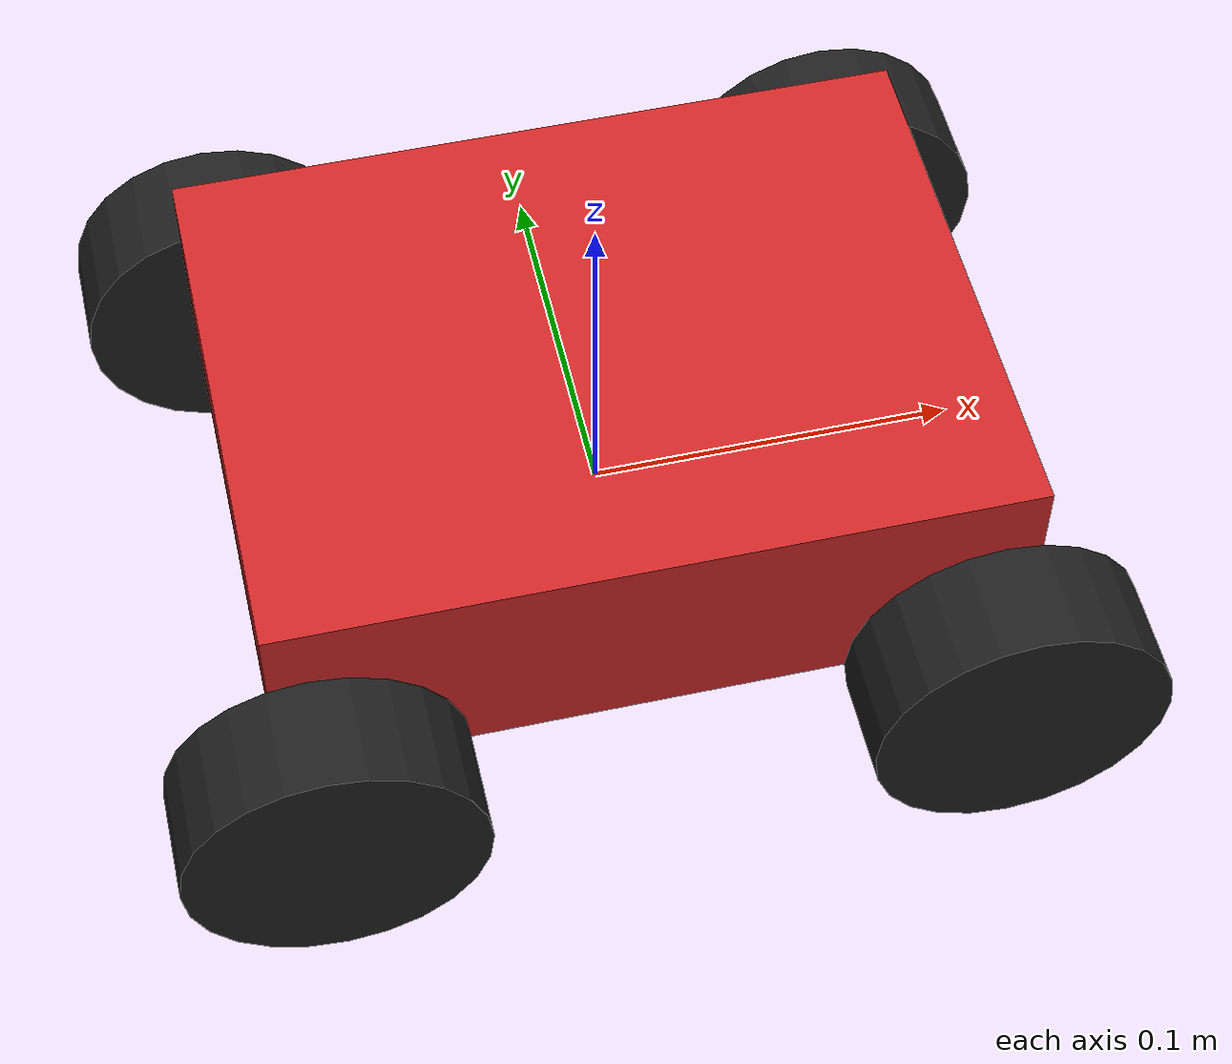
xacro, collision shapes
<?xml version="1.0"?>
<robot xmlns:xacro="http://www.ros.org/wiki/xacro" name="rosbot">

  <link name="base_footprint"/>

  <joint name="base_joint" type="fixed">
    <parent link="base_footprint"/>
    <child link="base_link"/>
    <origin xyz="0 0 0" rpy="0 0 0"/>
  </joint>

  <link name="base_link">
    <visual>
      <origin xyz="0 0 0" rpy="1.5708 0 1.5708"/>
      <geometry>
        <!-- Esto es un comentario escrito en un documento XML -->
        <mesh filename="package://mi_robot/meshes/rosbot/body.stl" scale="0.001 0.001 0.001"/>
      </geometry>
    </visual>

        <!-- Cubierta -->
    <visual>
      <origin xyz="0 0 0.06" rpy="1.5708 0 1.5708"/>
      <geometry>
        <mesh filename="package://mi_robot/meshes/rosbot/cover.stl" scale="0.001 0.001 0.001"/>
      </geometry>
    </visual>
    <collision>
      <origin xyz="0 0 0.03" rpy="0 0 0"/>
      <geometry>
        <box size="0.20 0.15 0.06"/> </geometry>
    </collision>

    <inertial>
      <mass value="1.0"/>
      <inertia ixx="0.01" ixy="0.0" ixz="0.0" iyy="0.01" iyz="0.0" izz="0.01"/>
    </inertial>
  </link>
    <!-- Gazebo material para calcular la friccion -->
  <gazebo reference="base_link">
    <material>Gazebo/Red</material>
  </gazebo>

  <!-- Ruedas -->
  <xacro:macro name="wheel" params="prefix x_reflect y_reflect">
    <joint name="${prefix}_joint" type="continuous">
      <parent link="base_link"/>
      <child link="${prefix}_link"/>
      <origin xyz="${x_reflect*0.09} ${y_reflect*0.09} 0" rpy="0 0 0"/>
      <axis xyz="0 1 0"/>
    </joint>

    <link name="${prefix}_link">
      <visual>
        <origin xyz="0 0 0" rpy="0 0 0"/>
        <geometry>
          <mesh filename="package://mi_robot/meshes/rosbot/wheel_a.dae" scale="1.0 1.0 1.0"/>
        </geometry>
      </visual>
      <collision>
        <origin xyz="0 0 0" rpy="${pi/2} 0 0"/>
        <geometry>
          <cylinder radius="0.04" length="0.03"/>
        </geometry>
      </collision>

      <inertial>
        <mass value="0.1"/>
        <inertia ixx="0.0001" ixy="0" ixz="0" iyy="0.0001" iyz="0" izz="0.0001"/>
      </inertial>
    </link>
   <gazebo reference="${prefix}_link">
      <mu1>1.0</mu1>
      <mu2>1.0</mu2>
      <material>Gazebo/Black</material>
    </gazebo>

  </xacro:macro>

  <xacro:wheel prefix="front_left"  x_reflect="1"  y_reflect="1" />
  <xacro:wheel prefix="front_right" x_reflect="1"  y_reflect="-1" />
  <xacro:wheel prefix="rear_left"   x_reflect="-1" y_reflect="1" />
  <xacro:wheel prefix="rear_right"  x_reflect="-1" y_reflect="-1" />
  <!-- Driver-->
  <gazebo>
   <plugin
    filename="gz-sim-diff-drive-system"
    name="gz::sim::systems::DiffDrive">
    <left_joint>front_left_joint</left_joint>
    <right_joint>front_right_joint</right_joint>
    <wheel_separation>0.18</wheel_separation>
    <wheel_diameter>0.08</wheel_diameter>
    <topic>cmd_vel</topic>
    <odom_topic>odom</odom_topic>
    <frame_id>odom</frame_id>
    <child_frame_id>base_footprint</child_frame_id>
   </plugin>
  </gazebo>
</robot>
